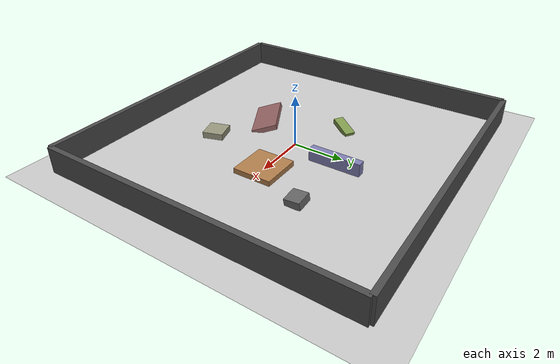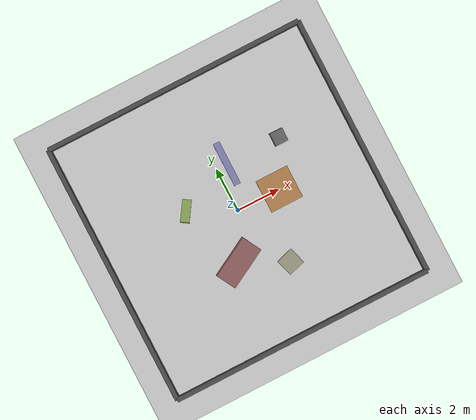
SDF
<?xml version="1.0" ?>
<sdf version="1.6">
  <world name="rough_terrain">
    <include><uri>model://sun</uri></include>
    <include><uri>model://ground_plane</uri></include>

    <!-- Ambient light -->
    <light name="ambient" type="directional">
      <diffuse>0.9 0.9 0.9 1</diffuse>
      <specular>0.1 0.1 0.1 1</specular>
      <direction>-0.5 0.5 -1</direction>
    </light>

    <!-- Block 1: step platform -->
    <model name="block1">
      <pose>2 0 0.1 0 0 0</pose><static>true</static>
      <link name="link"><collision name="col"><geometry><box><size>1.5 1.5 0.2</size></box></geometry></collision>
      <visual name="vis"><geometry><box><size>1.5 1.5 0.2</size></box></geometry>
        <material><ambient>0.7 0.5 0.3 1</ambient></material></visual></link>
    </model>

    <!-- Block 2: tall wall left -->
    <model name="block2">
      <pose>0.5 2 0.25 0 0 0</pose><static>true</static>
      <link name="link"><collision name="col"><geometry><box><size>0.3 2 0.5</size></box></geometry></collision>
      <visual name="vis"><geometry><box><size>0.3 2 0.5</size></box></geometry>
        <material><ambient>0.5 0.5 0.7 1</ambient></material></visual></link>
    </model>

    <!-- Block 3: ramp right -->
    <model name="block3">
      <pose>-1 -2 0.1 0.3 0 0.5</pose><static>true</static>
      <link name="link"><collision name="col"><geometry><box><size>2 1 0.2</size></box></geometry></collision>
      <visual name="vis"><geometry><box><size>2 1 0.2</size></box></geometry>
        <material><ambient>0.6 0.4 0.4 1</ambient></material></visual></link>
    </model>

    <!-- Block 4: scattered rocks -->
    <model name="block4">
      <pose>3 2 0.15 0.1 0.1 0</pose><static>true</static>
      <link name="link"><collision name="col"><geometry><box><size>0.6 0.6 0.3</size></box></geometry></collision>
      <visual name="vis"><geometry><box><size>0.6 0.6 0.3</size></box></geometry>
        <material><ambient>0.4 0.4 0.4 1</ambient></material></visual></link>
    </model>

    <model name="block5">
      <pose>-2 1 0.1 0 0.2 1</pose><static>true</static>
      <link name="link"><collision name="col"><geometry><box><size>1 0.4 0.2</size></box></geometry></collision>
      <visual name="vis"><geometry><box><size>1 0.4 0.2</size></box></geometry>
        <material><ambient>0.5 0.6 0.3 1</ambient></material></visual></link>
    </model>

    <model name="block6">
      <pose>1 -3 0.12 0 0 0.3</pose><static>true</static>
      <link name="link"><collision name="col"><geometry><box><size>0.8 0.8 0.25</size></box></geometry></collision>
      <visual name="vis"><geometry><box><size>0.8 0.8 0.25</size></box></geometry>
        <material><ambient>0.6 0.6 0.5 1</ambient></material></visual></link>
    </model>

    <!-- Boundary walls to keep robot in area -->
    <model name="wall_north">
      <pose>0 6 0.5 0 0 0</pose><static>true</static>
      <link name="link"><collision name="col"><geometry><box><size>12 0.2 1</size></box></geometry></collision>
      <visual name="vis"><geometry><box><size>12 0.2 1</size></box></geometry>
        <material><ambient>0.3 0.3 0.3 1</ambient></material></visual></link>
    </model>
    <model name="wall_south">
      <pose>0 -6 0.5 0 0 0</pose><static>true</static>
      <link name="link"><collision name="col"><geometry><box><size>12 0.2 1</size></box></geometry></collision>
      <visual name="vis"><geometry><box><size>12 0.2 1</size></box></geometry>
        <material><ambient>0.3 0.3 0.3 1</ambient></material></visual></link>
    </model>
    <model name="wall_east">
      <pose>6 0 0.5 0 0 0</pose><static>true</static>
      <link name="link"><collision name="col"><geometry><box><size>0.2 12 1</size></box></geometry></collision>
      <visual name="vis"><geometry><box><size>0.2 12 1</size></box></geometry>
        <material><ambient>0.3 0.3 0.3 1</ambient></material></visual></link>
    </model>
    <model name="wall_west">
      <pose>-6 0 0.5 0 0 0</pose><static>true</static>
      <link name="link"><collision name="col"><geometry><box><size>0.2 12 1</size></box></geometry></collision>
      <visual name="vis"><geometry><box><size>0.2 12 1</size></box></geometry>
        <material><ambient>0.3 0.3 0.3 1</ambient></material></visual></link>
    </model>

  </world>
</sdf>
